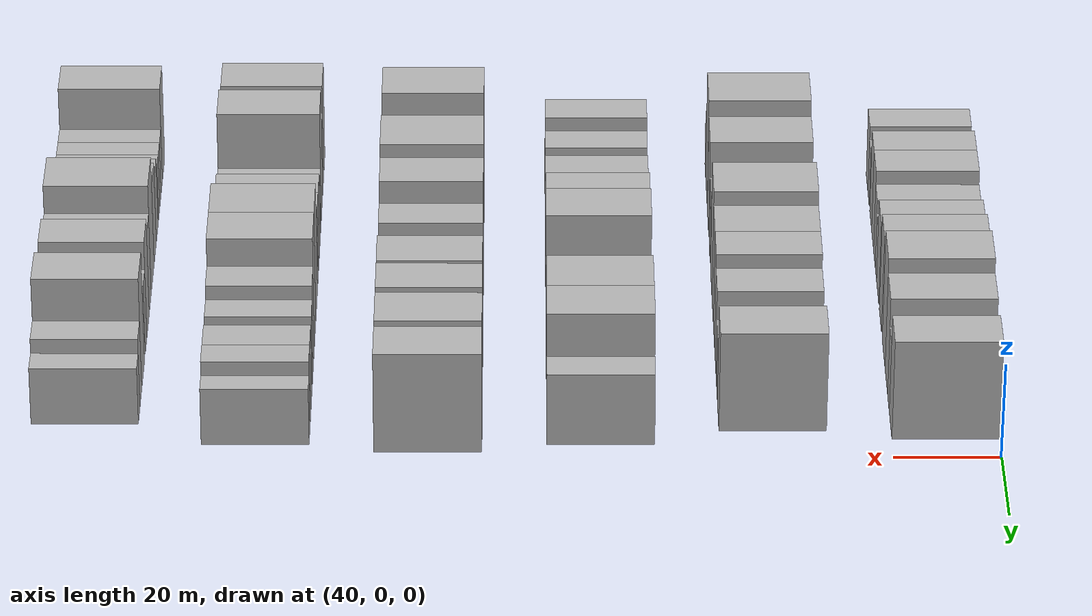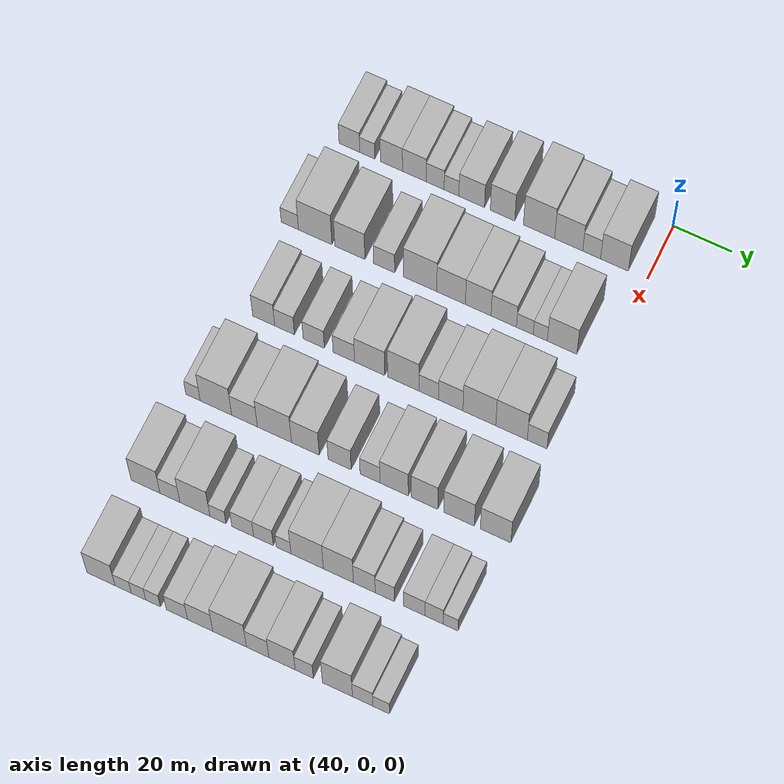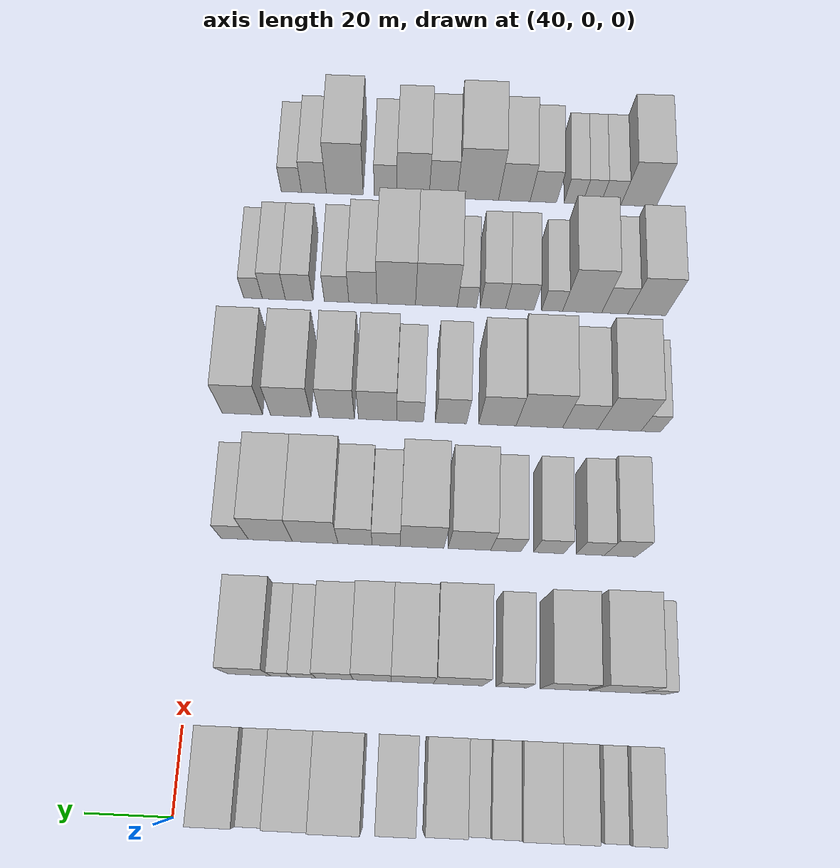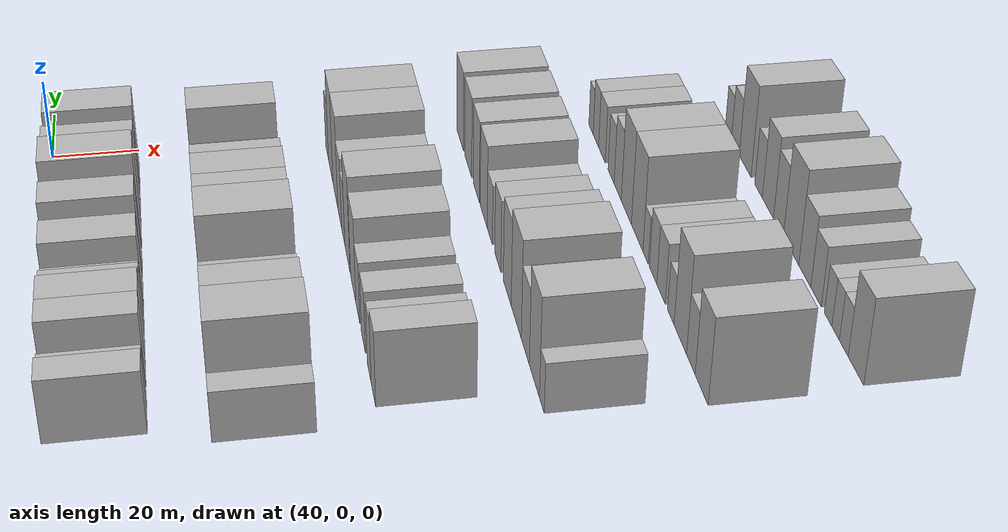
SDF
<sdf version="1.6">
 <world name="default">
  <model name="building_51">
   <static>1</static>
   <pose>50.0000 -103.2540 0 0.000000 0.000000 0.000000</pose>
   <link name="link">
    <pose>0 0 7.50 0 0 0</pose>
    <collision name="collision"><geometry><box><size>20.0000 7.2651 15.0000</size></box></geometry></collision>
    <visual name="visual">
     <cast_shadows>0</cast_shadows>
     <geometry><box><size>20.0000 7.2651 15.0000</size></box></geometry>
     <material>
      <script>
       <uri>model://HANNAS_wall/materials/scripts</uri>
       <uri>model://HANNAS_wall/materials/textures</uri>
       <name>vrc/HANNAS_wall</name>
      </script>
     </material>
    </visual>
   </link>
  </model>
  <model name="building_52">
   <static>1</static>
   <pose>50.0000 -96.9912 0 0.000000 0.000000 0.000000</pose>
   <link name="link">
    <pose>0 0 6.00 0 0 0</pose>
    <collision name="collision"><geometry><box><size>20.0000 5.2605 12.0000</size></box></geometry></collision>
    <visual name="visual">
     <cast_shadows>0</cast_shadows>
     <geometry><box><size>20.0000 5.2605 12.0000</size></box></geometry>
     <material>
      <script>
       <uri>model://HANNAS_wall/materials/scripts</uri>
       <uri>model://HANNAS_wall/materials/textures</uri>
       <name>vrc/HANNAS_wall</name>
      </script>
     </material>
    </visual>
   </link>
  </model>
  <model name="building_53">
   <static>1</static>
   <pose>50.0000 -88.5004 0 0.000000 0.000000 0.000000</pose>
   <link name="link">
    <pose>0 0 9.00 0 0 0</pose>
    <collision name="collision"><geometry><box><size>20.0000 7.7209 18.0000</size></box></geometry></collision>
    <visual name="visual">
     <cast_shadows>0</cast_shadows>
     <geometry><box><size>20.0000 7.7209 18.0000</size></box></geometry>
     <material>
      <script>
       <uri>model://HANNAS_wall/materials/scripts</uri>
       <uri>model://HANNAS_wall/materials/textures</uri>
       <name>vrc/HANNAS_wall</name>
      </script>
     </material>
    </visual>
   </link>
  </model>
  <model name="building_54">
   <static>1</static>
   <pose>50.0000 -80.4961 0 0.000000 0.000000 0.000000</pose>
   <link name="link">
    <pose>0 0 9.00 0 0 0</pose>
    <collision name="collision"><geometry><box><size>20.0000 8.2876 18.0000</size></box></geometry></collision>
    <visual name="visual">
     <cast_shadows>0</cast_shadows>
     <geometry><box><size>20.0000 8.2876 18.0000</size></box></geometry>
     <material>
      <script>
       <uri>model://HANNAS_wall/materials/scripts</uri>
       <uri>model://HANNAS_wall/materials/textures</uri>
       <name>vrc/HANNAS_wall</name>
      </script>
     </material>
    </visual>
   </link>
  </model>
  <model name="building_55">
   <static>1</static>
   <pose>50.0000 -73.2451 0 0.000000 0.000000 0.000000</pose>
   <link name="link">
    <pose>0 0 7.50 0 0 0</pose>
    <collision name="collision"><geometry><box><size>20.0000 6.2145 15.0000</size></box></geometry></collision>
    <visual name="visual">
     <cast_shadows>0</cast_shadows>
     <geometry><box><size>20.0000 6.2145 15.0000</size></box></geometry>
     <material>
      <script>
       <uri>model://HANNAS_wall/materials/scripts</uri>
       <uri>model://HANNAS_wall/materials/textures</uri>
       <name>vrc/HANNAS_wall</name>
      </script>
     </material>
    </visual>
   </link>
  </model>
  <model name="building_56">
   <static>1</static>
   <pose>50.0000 -67.5578 0 0.000000 0.000000 0.000000</pose>
   <link name="link">
    <pose>0 0 6.00 0 0 0</pose>
    <collision name="collision"><geometry><box><size>20.0000 5.1600 12.0000</size></box></geometry></collision>
    <visual name="visual">
     <cast_shadows>0</cast_shadows>
     <geometry><box><size>20.0000 5.1600 12.0000</size></box></geometry>
     <material>
      <script>
       <uri>model://HANNAS_wall/materials/scripts</uri>
       <uri>model://HANNAS_wall/materials/textures</uri>
       <name>vrc/HANNAS_wall</name>
      </script>
     </material>
    </visual>
   </link>
  </model>
  <model name="building_57">
   <static>1</static>
   <pose>50.0000 -60.5214 0 0.000000 0.000000 0.000000</pose>
   <link name="link">
    <pose>0 0 9.00 0 0 0</pose>
    <collision name="collision"><geometry><box><size>20.0000 8.9129 18.0000</size></box></geometry></collision>
    <visual name="visual">
     <cast_shadows>0</cast_shadows>
     <geometry><box><size>20.0000 8.9129 18.0000</size></box></geometry>
     <material>
      <script>
       <uri>model://HANNAS_wall/materials/scripts</uri>
       <uri>model://HANNAS_wall/materials/textures</uri>
       <name>vrc/HANNAS_wall</name>
      </script>
     </material>
    </visual>
   </link>
  </model>
  <model name="building_58">
   <static>1</static>
   <pose>50.0000 -49.8294 0 0.000000 0.000000 0.000000</pose>
   <link name="link">
    <pose>0 0 10.50 0 0 0</pose>
    <collision name="collision"><geometry><box><size>20.0000 8.4711 21.0000</size></box></geometry></collision>
    <visual name="visual">
     <cast_shadows>0</cast_shadows>
     <geometry><box><size>20.0000 8.4711 21.0000</size></box></geometry>
     <material>
      <script>
       <uri>model://HANNAS_wall/materials/scripts</uri>
       <uri>model://HANNAS_wall/materials/textures</uri>
       <name>vrc/HANNAS_wall</name>
      </script>
     </material>
    </visual>
   </link>
  </model>
  <model name="building_59">
   <static>1</static>
   <pose>50.0000 -37.2145 0 0.000000 0.000000 0.000000</pose>
   <link name="link">
    <pose>0 0 12.00 0 0 0</pose>
    <collision name="collision"><geometry><box><size>20.0000 10.7588 24.0000</size></box></geometry></collision>
    <visual name="visual">
     <cast_shadows>0</cast_shadows>
     <geometry><box><size>20.0000 10.7588 24.0000</size></box></geometry>
     <material>
      <script>
       <uri>model://HANNAS_wall/materials/scripts</uri>
       <uri>model://HANNAS_wall/materials/textures</uri>
       <name>vrc/HANNAS_wall</name>
      </script>
     </material>
    </visual>
   </link>
  </model>
  <model name="building_60">
   <static>1</static>
   <pose>50.0000 -26.9873 0 0.000000 0.000000 0.000000</pose>
   <link name="link">
    <pose>0 0 10.50 0 0 0</pose>
    <collision name="collision"><geometry><box><size>20.0000 9.6956 21.0000</size></box></geometry></collision>
    <visual name="visual">
     <cast_shadows>0</cast_shadows>
     <geometry><box><size>20.0000 9.6956 21.0000</size></box></geometry>
     <material>
      <script>
       <uri>model://HANNAS_wall/materials/scripts</uri>
       <uri>model://HANNAS_wall/materials/textures</uri>
       <name>vrc/HANNAS_wall</name>
      </script>
     </material>
    </visual>
   </link>
  </model>
  <model name="building_61">
   <static>1</static>
   <pose>50.0000 -19.0849 0 0.000000 0.000000 0.000000</pose>
   <link name="link">
    <pose>0 0 7.50 0 0 0</pose>
    <collision name="collision"><geometry><box><size>20.0000 6.1093 15.0000</size></box></geometry></collision>
    <visual name="visual">
     <cast_shadows>0</cast_shadows>
     <geometry><box><size>20.0000 6.1093 15.0000</size></box></geometry>
     <material>
      <script>
       <uri>model://HANNAS_wall/materials/scripts</uri>
       <uri>model://HANNAS_wall/materials/textures</uri>
       <name>vrc/HANNAS_wall</name>
      </script>
     </material>
    </visual>
   </link>
  </model>
  <model name="building_62">
   <static>1</static>
   <pose>50.0000 -11.2465 0 0.000000 0.000000 0.000000</pose>
   <link name="link">
    <pose>0 0 10.50 0 0 0</pose>
    <collision name="collision"><geometry><box><size>20.0000 9.5676 21.0000</size></box></geometry></collision>
    <visual name="visual">
     <cast_shadows>0</cast_shadows>
     <geometry><box><size>20.0000 9.5676 21.0000</size></box></geometry>
     <material>
      <script>
       <uri>model://HANNAS_wall/materials/scripts</uri>
       <uri>model://HANNAS_wall/materials/textures</uri>
       <name>vrc/HANNAS_wall</name>
      </script>
     </material>
    </visual>
   </link>
  </model>
  <model name="building_168">
   <static>1</static>
   <pose>82.0000 -108.4300 0 0.000000 0.000000 0.000000</pose>
   <link name="link">
    <pose>0 0 6.00 0 0 0</pose>
    <collision name="collision"><geometry><box><size>20.0000 5.9896 12.0000</size></box></geometry></collision>
    <visual name="visual">
     <cast_shadows>0</cast_shadows>
     <geometry><box><size>20.0000 5.9896 12.0000</size></box></geometry>
     <material>
      <script>
       <uri>model://HANNAS_wall/materials/scripts</uri>
       <uri>model://HANNAS_wall/materials/textures</uri>
       <name>vrc/HANNAS_wall</name>
      </script>
     </material>
    </visual>
   </link>
  </model>
  <model name="building_169">
   <static>1</static>
   <pose>82.0000 -99.5789 0 0.000000 0.000000 0.000000</pose>
   <link name="link">
    <pose>0 0 12.00 0 0 0</pose>
    <collision name="collision"><geometry><box><size>20.0000 11.7125 24.0000</size></box></geometry></collision>
    <visual name="visual">
     <cast_shadows>0</cast_shadows>
     <geometry><box><size>20.0000 11.7125 24.0000</size></box></geometry>
     <material>
      <script>
       <uri>model://HANNAS_wall/materials/scripts</uri>
       <uri>model://HANNAS_wall/materials/textures</uri>
       <name>vrc/HANNAS_wall</name>
      </script>
     </material>
    </visual>
   </link>
  </model>
  <model name="building_170">
   <static>1</static>
   <pose>82.0000 -87.4843 0 0.000000 0.000000 0.000000</pose>
   <link name="link">
    <pose>0 0 10.50 0 0 0</pose>
    <collision name="collision"><geometry><box><size>20.0000 10.4766 21.0000</size></box></geometry></collision>
    <visual name="visual">
     <cast_shadows>0</cast_shadows>
     <geometry><box><size>20.0000 10.4766 21.0000</size></box></geometry>
     <material>
      <script>
       <uri>model://HANNAS_wall/materials/scripts</uri>
       <uri>model://HANNAS_wall/materials/textures</uri>
       <name>vrc/HANNAS_wall</name>
      </script>
     </material>
    </visual>
   </link>
  </model>
  <model name="building_171">
   <static>1</static>
   <pose>82.0000 -75.5861 0 0.000000 0.000000 0.000000</pose>
   <link name="link">
    <pose>0 0 7.50 0 0 0</pose>
    <collision name="collision"><geometry><box><size>20.0000 7.3199 15.0000</size></box></geometry></collision>
    <visual name="visual">
     <cast_shadows>0</cast_shadows>
     <geometry><box><size>20.0000 7.3199 15.0000</size></box></geometry>
     <material>
      <script>
       <uri>model://HANNAS_wall/materials/scripts</uri>
       <uri>model://HANNAS_wall/materials/textures</uri>
       <name>vrc/HANNAS_wall</name>
      </script>
     </material>
    </visual>
   </link>
  </model>
  <model name="building_172">
   <static>1</static>
   <pose>82.0000 -63.1602 0 0.000000 0.000000 0.000000</pose>
   <link name="link">
    <pose>0 0 12.00 0 0 0</pose>
    <collision name="collision"><geometry><box><size>20.0000 11.5320 24.0000</size></box></geometry></collision>
    <visual name="visual">
     <cast_shadows>0</cast_shadows>
     <geometry><box><size>20.0000 11.5320 24.0000</size></box></geometry>
     <material>
      <script>
       <uri>model://HANNAS_wall/materials/scripts</uri>
       <uri>model://HANNAS_wall/materials/textures</uri>
       <name>vrc/HANNAS_wall</name>
      </script>
     </material>
    </visual>
   </link>
  </model>
  <model name="building_173">
   <static>1</static>
   <pose>82.0000 -52.4671 0 0.000000 0.000000 0.000000</pose>
   <link name="link">
    <pose>0 0 10.50 0 0 0</pose>
    <collision name="collision"><geometry><box><size>20.0000 9.8542 21.0000</size></box></geometry></collision>
    <visual name="visual">
     <cast_shadows>0</cast_shadows>
     <geometry><box><size>20.0000 9.8542 21.0000</size></box></geometry>
     <material>
      <script>
       <uri>model://HANNAS_wall/materials/scripts</uri>
       <uri>model://HANNAS_wall/materials/textures</uri>
       <name>vrc/HANNAS_wall</name>
      </script>
     </material>
    </visual>
   </link>
  </model>
  <model name="building_174">
   <static>1</static>
   <pose>82.0000 -43.1349 0 0.000000 0.000000 0.000000</pose>
   <link name="link">
    <pose>0 0 10.50 0 0 0</pose>
    <collision name="collision"><geometry><box><size>20.0000 8.8101 21.0000</size></box></geometry></collision>
    <visual name="visual">
     <cast_shadows>0</cast_shadows>
     <geometry><box><size>20.0000 8.8101 21.0000</size></box></geometry>
     <material>
      <script>
       <uri>model://HANNAS_wall/materials/scripts</uri>
       <uri>model://HANNAS_wall/materials/textures</uri>
       <name>vrc/HANNAS_wall</name>
      </script>
     </material>
    </visual>
   </link>
  </model>
  <model name="building_175">
   <static>1</static>
   <pose>82.0000 -34.3583 0 0.000000 0.000000 0.000000</pose>
   <link name="link">
    <pose>0 0 9.00 0 0 0</pose>
    <collision name="collision"><geometry><box><size>20.0000 8.7432 18.0000</size></box></geometry></collision>
    <visual name="visual">
     <cast_shadows>0</cast_shadows>
     <geometry><box><size>20.0000 8.7432 18.0000</size></box></geometry>
     <material>
      <script>
       <uri>model://HANNAS_wall/materials/scripts</uri>
       <uri>model://HANNAS_wall/materials/textures</uri>
       <name>vrc/HANNAS_wall</name>
      </script>
     </material>
    </visual>
   </link>
  </model>
  <model name="building_176">
   <static>1</static>
   <pose>82.0000 -27.1384 0 0.000000 0.000000 0.000000</pose>
   <link name="link">
    <pose>0 0 6.00 0 0 0</pose>
    <collision name="collision"><geometry><box><size>20.0000 5.6965 12.0000</size></box></geometry></collision>
    <visual name="visual">
     <cast_shadows>0</cast_shadows>
     <geometry><box><size>20.0000 5.6965 12.0000</size></box></geometry>
     <material>
      <script>
       <uri>model://HANNAS_wall/materials/scripts</uri>
       <uri>model://HANNAS_wall/materials/textures</uri>
       <name>vrc/HANNAS_wall</name>
      </script>
     </material>
    </visual>
   </link>
  </model>
  <model name="building_177">
   <static>1</static>
   <pose>82.0000 -21.8829 0 0.000000 0.000000 0.000000</pose>
   <link name="link">
    <pose>0 0 6.00 0 0 0</pose>
    <collision name="collision"><geometry><box><size>20.0000 4.8146 12.0000</size></box></geometry></collision>
    <visual name="visual">
     <cast_shadows>0</cast_shadows>
     <geometry><box><size>20.0000 4.8146 12.0000</size></box></geometry>
     <material>
      <script>
       <uri>model://HANNAS_wall/materials/scripts</uri>
       <uri>model://HANNAS_wall/materials/textures</uri>
       <name>vrc/HANNAS_wall</name>
      </script>
     </material>
    </visual>
   </link>
  </model>
  <model name="building_178">
   <static>1</static>
   <pose>82.0000 -14.4329 0 0.000000 0.000000 0.000000</pose>
   <link name="link">
    <pose>0 0 10.50 0 0 0</pose>
    <collision name="collision"><geometry><box><size>20.0000 10.0854 21.0000</size></box></geometry></collision>
    <visual name="visual">
     <cast_shadows>0</cast_shadows>
     <geometry><box><size>20.0000 10.0854 21.0000</size></box></geometry>
     <material>
      <script>
       <uri>model://HANNAS_wall/materials/scripts</uri>
       <uri>model://HANNAS_wall/materials/textures</uri>
       <name>vrc/HANNAS_wall</name>
      </script>
     </material>
    </visual>
   </link>
  </model>
  <model name="building_284">
   <static>1</static>
   <pose>114.0000 -101.6363 0 0.000000 0.000000 0.000000</pose>
   <link name="link">
    <pose>0 0 9.00 0 0 0</pose>
    <collision name="collision"><geometry><box><size>20.0000 7.6296 18.0000</size></box></geometry></collision>
    <visual name="visual">
     <cast_shadows>0</cast_shadows>
     <geometry><box><size>20.0000 7.6296 18.0000</size></box></geometry>
     <material>
      <script>
       <uri>model://HANNAS_wall/materials/scripts</uri>
       <uri>model://HANNAS_wall/materials/textures</uri>
       <name>vrc/HANNAS_wall</name>
      </script>
     </material>
    </visual>
   </link>
  </model>
  <model name="building_285">
   <static>1</static>
   <pose>114.0000 -94.4002 0 0.000000 0.000000 0.000000</pose>
   <link name="link">
    <pose>0 0 7.50 0 0 0</pose>
    <collision name="collision"><geometry><box><size>20.0000 6.8426 15.0000</size></box></geometry></collision>
    <visual name="visual">
     <cast_shadows>0</cast_shadows>
     <geometry><box><size>20.0000 6.8426 15.0000</size></box></geometry>
     <material>
      <script>
       <uri>model://HANNAS_wall/materials/scripts</uri>
       <uri>model://HANNAS_wall/materials/textures</uri>
       <name>vrc/HANNAS_wall</name>
      </script>
     </material>
    </visual>
   </link>
  </model>
  <model name="building_286">
   <static>1</static>
   <pose>114.0000 -84.3075 0 0.000000 0.000000 0.000000</pose>
   <link name="link">
    <pose>0 0 7.50 0 0 0</pose>
    <collision name="collision"><geometry><box><size>20.0000 7.3428 15.0000</size></box></geometry></collision>
    <visual name="visual">
     <cast_shadows>0</cast_shadows>
     <geometry><box><size>20.0000 7.3428 15.0000</size></box></geometry>
     <material>
      <script>
       <uri>model://HANNAS_wall/materials/scripts</uri>
       <uri>model://HANNAS_wall/materials/textures</uri>
       <name>vrc/HANNAS_wall</name>
      </script>
     </material>
    </visual>
   </link>
  </model>
  <model name="building_287">
   <static>1</static>
   <pose>114.0000 -73.9359 0 0.000000 0.000000 0.000000</pose>
   <link name="link">
    <pose>0 0 7.50 0 0 0</pose>
    <collision name="collision"><geometry><box><size>20.0000 7.4003 15.0000</size></box></geometry></collision>
    <visual name="visual">
     <cast_shadows>0</cast_shadows>
     <geometry><box><size>20.0000 7.4003 15.0000</size></box></geometry>
     <material>
      <script>
       <uri>model://HANNAS_wall/materials/scripts</uri>
       <uri>model://HANNAS_wall/materials/textures</uri>
       <name>vrc/HANNAS_wall</name>
      </script>
     </material>
    </visual>
   </link>
  </model>
  <model name="building_288">
   <static>1</static>
   <pose>114.0000 -65.0662 0 0.000000 0.000000 0.000000</pose>
   <link name="link">
    <pose>0 0 10.50 0 0 0</pose>
    <collision name="collision"><geometry><box><size>20.0000 10.3392 21.0000</size></box></geometry></collision>
    <visual name="visual">
     <cast_shadows>0</cast_shadows>
     <geometry><box><size>20.0000 10.3392 21.0000</size></box></geometry>
     <material>
      <script>
       <uri>model://HANNAS_wall/materials/scripts</uri>
       <uri>model://HANNAS_wall/materials/textures</uri>
       <name>vrc/HANNAS_wall</name>
      </script>
     </material>
    </visual>
   </link>
  </model>
  <model name="building_289">
   <static>1</static>
   <pose>114.0000 -53.5792 0 0.000000 0.000000 0.000000</pose>
   <link name="link">
    <pose>0 0 12.00 0 0 0</pose>
    <collision name="collision"><geometry><box><size>20.0000 10.6347 24.0000</size></box></geometry></collision>
    <visual name="visual">
     <cast_shadows>0</cast_shadows>
     <geometry><box><size>20.0000 10.6347 24.0000</size></box></geometry>
     <material>
      <script>
       <uri>model://HANNAS_wall/materials/scripts</uri>
       <uri>model://HANNAS_wall/materials/textures</uri>
       <name>vrc/HANNAS_wall</name>
      </script>
     </material>
    </visual>
   </link>
  </model>
  <model name="building_290">
   <static>1</static>
   <pose>114.0000 -44.8897 0 0.000000 0.000000 0.000000</pose>
   <link name="link">
    <pose>0 0 7.50 0 0 0</pose>
    <collision name="collision"><geometry><box><size>20.0000 6.7442 15.0000</size></box></geometry></collision>
    <visual name="visual">
     <cast_shadows>0</cast_shadows>
     <geometry><box><size>20.0000 6.7442 15.0000</size></box></geometry>
     <material>
      <script>
       <uri>model://HANNAS_wall/materials/scripts</uri>
       <uri>model://HANNAS_wall/materials/textures</uri>
       <name>vrc/HANNAS_wall</name>
      </script>
     </material>
    </visual>
   </link>
  </model>
  <model name="building_291">
   <static>1</static>
   <pose>114.0000 -37.3529 0 0.000000 0.000000 0.000000</pose>
   <link name="link">
    <pose>0 0 9.00 0 0 0</pose>
    <collision name="collision"><geometry><box><size>20.0000 8.3294 18.0000</size></box></geometry></collision>
    <visual name="visual">
     <cast_shadows>0</cast_shadows>
     <geometry><box><size>20.0000 8.3294 18.0000</size></box></geometry>
     <material>
      <script>
       <uri>model://HANNAS_wall/materials/scripts</uri>
       <uri>model://HANNAS_wall/materials/textures</uri>
       <name>vrc/HANNAS_wall</name>
      </script>
     </material>
    </visual>
   </link>
  </model>
  <model name="building_292">
   <static>1</static>
   <pose>114.0000 -27.6240 0 0.000000 0.000000 0.000000</pose>
   <link name="link">
    <pose>0 0 12.00 0 0 0</pose>
    <collision name="collision"><geometry><box><size>20.0000 11.1285 24.0000</size></box></geometry></collision>
    <visual name="visual">
     <cast_shadows>0</cast_shadows>
     <geometry><box><size>20.0000 11.1285 24.0000</size></box></geometry>
     <material>
      <script>
       <uri>model://HANNAS_wall/materials/scripts</uri>
       <uri>model://HANNAS_wall/materials/textures</uri>
       <name>vrc/HANNAS_wall</name>
      </script>
     </material>
    </visual>
   </link>
  </model>
  <model name="building_293">
   <static>1</static>
   <pose>114.0000 -16.7165 0 0.000000 0.000000 0.000000</pose>
   <link name="link">
    <pose>0 0 12.00 0 0 0</pose>
    <collision name="collision"><geometry><box><size>20.0000 10.6866 24.0000</size></box></geometry></collision>
    <visual name="visual">
     <cast_shadows>0</cast_shadows>
     <geometry><box><size>20.0000 10.6866 24.0000</size></box></geometry>
     <material>
      <script>
       <uri>model://HANNAS_wall/materials/scripts</uri>
       <uri>model://HANNAS_wall/materials/textures</uri>
       <name>vrc/HANNAS_wall</name>
      </script>
     </material>
    </visual>
   </link>
  </model>
  <model name="building_294">
   <static>1</static>
   <pose>114.0000 -8.0231 0 0.000000 0.000000 0.000000</pose>
   <link name="link">
    <pose>0 0 7.50 0 0 0</pose>
    <collision name="collision"><geometry><box><size>20.0000 6.7001 15.0000</size></box></geometry></collision>
    <visual name="visual">
     <cast_shadows>0</cast_shadows>
     <geometry><box><size>20.0000 6.7001 15.0000</size></box></geometry>
     <material>
      <script>
       <uri>model://HANNAS_wall/materials/scripts</uri>
       <uri>model://HANNAS_wall/materials/textures</uri>
       <name>vrc/HANNAS_wall</name>
      </script>
     </material>
    </visual>
   </link>
  </model>
  <model name="building_406">
   <static>1</static>
   <pose>146.0000 -110.0127 0 0.000000 0.000000 0.000000</pose>
   <link name="link">
    <pose>0 0 6.00 0 0 0</pose>
    <collision name="collision"><geometry><box><size>20.0000 4.9311 12.0000</size></box></geometry></collision>
    <visual name="visual">
     <cast_shadows>0</cast_shadows>
     <geometry><box><size>20.0000 4.9311 12.0000</size></box></geometry>
     <material>
      <script>
       <uri>model://HANNAS_wall/materials/scripts</uri>
       <uri>model://HANNAS_wall/materials/textures</uri>
       <name>vrc/HANNAS_wall</name>
      </script>
     </material>
    </visual>
   </link>
  </model>
  <model name="building_407">
   <static>1</static>
   <pose>146.0000 -102.1307 0 0.000000 0.000000 0.000000</pose>
   <link name="link">
    <pose>0 0 12.00 0 0 0</pose>
    <collision name="collision"><geometry><box><size>20.0000 10.8327 24.0000</size></box></geometry></collision>
    <visual name="visual">
     <cast_shadows>0</cast_shadows>
     <geometry><box><size>20.0000 10.8327 24.0000</size></box></geometry>
     <material>
      <script>
       <uri>model://HANNAS_wall/materials/scripts</uri>
       <uri>model://HANNAS_wall/materials/textures</uri>
       <name>vrc/HANNAS_wall</name>
      </script>
     </material>
    </visual>
   </link>
  </model>
  <model name="building_408">
   <static>1</static>
   <pose>146.0000 -92.2898 0 0.000000 0.000000 0.000000</pose>
   <link name="link">
    <pose>0 0 9.00 0 0 0</pose>
    <collision name="collision"><geometry><box><size>20.0000 8.8492 18.0000</size></box></geometry></collision>
    <visual name="visual">
     <cast_shadows>0</cast_shadows>
     <geometry><box><size>20.0000 8.8492 18.0000</size></box></geometry>
     <material>
      <script>
       <uri>model://HANNAS_wall/materials/scripts</uri>
       <uri>model://HANNAS_wall/materials/textures</uri>
       <name>vrc/HANNAS_wall</name>
      </script>
     </material>
    </visual>
   </link>
  </model>
  <model name="building_409">
   <static>1</static>
   <pose>146.0000 -82.0065 0 0.000000 0.000000 0.000000</pose>
   <link name="link">
    <pose>0 0 12.00 0 0 0</pose>
    <collision name="collision"><geometry><box><size>20.0000 11.7173 24.0000</size></box></geometry></collision>
    <visual name="visual">
     <cast_shadows>0</cast_shadows>
     <geometry><box><size>20.0000 11.7173 24.0000</size></box></geometry>
     <material>
      <script>
       <uri>model://HANNAS_wall/materials/scripts</uri>
       <uri>model://HANNAS_wall/materials/textures</uri>
       <name>vrc/HANNAS_wall</name>
      </script>
     </material>
    </visual>
   </link>
  </model>
  <model name="building_410">
   <static>1</static>
   <pose>146.0000 -71.4161 0 0.000000 0.000000 0.000000</pose>
   <link name="link">
    <pose>0 0 10.50 0 0 0</pose>
    <collision name="collision"><geometry><box><size>20.0000 9.4635 21.0000</size></box></geometry></collision>
    <visual name="visual">
     <cast_shadows>0</cast_shadows>
     <geometry><box><size>20.0000 9.4635 21.0000</size></box></geometry>
     <material>
      <script>
       <uri>model://HANNAS_wall/materials/scripts</uri>
       <uri>model://HANNAS_wall/materials/textures</uri>
       <name>vrc/HANNAS_wall</name>
      </script>
     </material>
    </visual>
   </link>
  </model>
  <model name="building_411">
   <static>1</static>
   <pose>146.0000 -59.7430 0 0.000000 0.000000 0.000000</pose>
   <link name="link">
    <pose>0 0 9.00 0 0 0</pose>
    <collision name="collision"><geometry><box><size>20.0000 7.8827 18.0000</size></box></geometry></collision>
    <visual name="visual">
     <cast_shadows>0</cast_shadows>
     <geometry><box><size>20.0000 7.8827 18.0000</size></box></geometry>
     <material>
      <script>
       <uri>model://HANNAS_wall/materials/scripts</uri>
       <uri>model://HANNAS_wall/materials/textures</uri>
       <name>vrc/HANNAS_wall</name>
      </script>
     </material>
    </visual>
   </link>
  </model>
  <model name="building_412">
   <static>1</static>
   <pose>146.0000 -49.4036 0 0.000000 0.000000 0.000000</pose>
   <link name="link">
    <pose>0 0 7.50 0 0 0</pose>
    <collision name="collision"><geometry><box><size>20.0000 6.7962 15.0000</size></box></geometry></collision>
    <visual name="visual">
     <cast_shadows>0</cast_shadows>
     <geometry><box><size>20.0000 6.7962 15.0000</size></box></geometry>
     <material>
      <script>
       <uri>model://HANNAS_wall/materials/scripts</uri>
       <uri>model://HANNAS_wall/materials/textures</uri>
       <name>vrc/HANNAS_wall</name>
      </script>
     </material>
    </visual>
   </link>
  </model>
  <model name="building_413">
   <static>1</static>
   <pose>146.0000 -41.2152 0 0.000000 0.000000 0.000000</pose>
   <link name="link">
    <pose>0 0 10.50 0 0 0</pose>
    <collision name="collision"><geometry><box><size>20.0000 9.5805 21.0000</size></box></geometry></collision>
    <visual name="visual">
     <cast_shadows>0</cast_shadows>
     <geometry><box><size>20.0000 9.5805 21.0000</size></box></geometry>
     <material>
      <script>
       <uri>model://HANNAS_wall/materials/scripts</uri>
       <uri>model://HANNAS_wall/materials/textures</uri>
       <name>vrc/HANNAS_wall</name>
      </script>
     </material>
    </visual>
   </link>
  </model>
  <model name="building_414">
   <static>1</static>
   <pose>146.0000 -30.9499 0 0.000000 0.000000 0.000000</pose>
   <link name="link">
    <pose>0 0 10.50 0 0 0</pose>
    <collision name="collision"><geometry><box><size>20.0000 8.9502 21.0000</size></box></geometry></collision>
    <visual name="visual">
     <cast_shadows>0</cast_shadows>
     <geometry><box><size>20.0000 8.9502 21.0000</size></box></geometry>
     <material>
      <script>
       <uri>model://HANNAS_wall/materials/scripts</uri>
       <uri>model://HANNAS_wall/materials/textures</uri>
       <name>vrc/HANNAS_wall</name>
      </script>
     </material>
    </visual>
   </link>
  </model>
  <model name="building_415">
   <static>1</static>
   <pose>146.0000 -19.3184 0 0.000000 0.000000 0.000000</pose>
   <link name="link">
    <pose>0 0 10.50 0 0 0</pose>
    <collision name="collision"><geometry><box><size>20.0000 10.3127 21.0000</size></box></geometry></collision>
    <visual name="visual">
     <cast_shadows>0</cast_shadows>
     <geometry><box><size>20.0000 10.3127 21.0000</size></box></geometry>
     <material>
      <script>
       <uri>model://HANNAS_wall/materials/scripts</uri>
       <uri>model://HANNAS_wall/materials/textures</uri>
       <name>vrc/HANNAS_wall</name>
      </script>
     </material>
    </visual>
   </link>
  </model>
  <model name="building_416">
   <static>1</static>
   <pose>146.0000 -7.0288 0 0.000000 0.000000 0.000000</pose>
   <link name="link">
    <pose>0 0 10.50 0 0 0</pose>
    <collision name="collision"><geometry><box><size>20.0000 10.2665 21.0000</size></box></geometry></collision>
    <visual name="visual">
     <cast_shadows>0</cast_shadows>
     <geometry><box><size>20.0000 10.2665 21.0000</size></box></geometry>
     <material>
      <script>
       <uri>model://HANNAS_wall/materials/scripts</uri>
       <uri>model://HANNAS_wall/materials/textures</uri>
       <name>vrc/HANNAS_wall</name>
      </script>
     </material>
    </visual>
   </link>
  </model>
  <model name="building_525">
   <static>1</static>
   <pose>178.0000 -110.0388 0 0.000000 0.000000 0.000000</pose>
   <link name="link">
    <pose>0 0 10.50 0 0 0</pose>
    <collision name="collision"><geometry><box><size>20.0000 9.8669 21.0000</size></box></geometry></collision>
    <visual name="visual">
     <cast_shadows>0</cast_shadows>
     <geometry><box><size>20.0000 9.8669 21.0000</size></box></geometry>
     <material>
      <script>
       <uri>model://HANNAS_wall/materials/scripts</uri>
       <uri>model://HANNAS_wall/materials/textures</uri>
       <name>vrc/HANNAS_wall</name>
      </script>
     </material>
    </visual>
   </link>
  </model>
  <model name="building_526">
   <static>1</static>
   <pose>178.0000 -101.6885 0 0.000000 0.000000 0.000000</pose>
   <link name="link">
    <pose>0 0 7.50 0 0 0</pose>
    <collision name="collision"><geometry><box><size>20.0000 6.8337 15.0000</size></box></geometry></collision>
    <visual name="visual">
     <cast_shadows>0</cast_shadows>
     <geometry><box><size>20.0000 6.8337 15.0000</size></box></geometry>
     <material>
      <script>
       <uri>model://HANNAS_wall/materials/scripts</uri>
       <uri>model://HANNAS_wall/materials/textures</uri>
       <name>vrc/HANNAS_wall</name>
      </script>
     </material>
    </visual>
   </link>
  </model>
  <model name="building_527">
   <static>1</static>
   <pose>178.0000 -93.1528 0 0.000000 0.000000 0.000000</pose>
   <link name="link">
    <pose>0 0 12.00 0 0 0</pose>
    <collision name="collision"><geometry><box><size>20.0000 10.2378 24.0000</size></box></geometry></collision>
    <visual name="visual">
     <cast_shadows>0</cast_shadows>
     <geometry><box><size>20.0000 10.2378 24.0000</size></box></geometry>
     <material>
      <script>
       <uri>model://HANNAS_wall/materials/scripts</uri>
       <uri>model://HANNAS_wall/materials/textures</uri>
       <name>vrc/HANNAS_wall</name>
      </script>
     </material>
    </visual>
   </link>
  </model>
  <model name="building_528">
   <static>1</static>
   <pose>178.0000 -85.3049 0 0.000000 0.000000 0.000000</pose>
   <link name="link">
    <pose>0 0 6.00 0 0 0</pose>
    <collision name="collision"><geometry><box><size>20.0000 5.4581 12.0000</size></box></geometry></collision>
    <visual name="visual">
     <cast_shadows>0</cast_shadows>
     <geometry><box><size>20.0000 5.4581 12.0000</size></box></geometry>
     <material>
      <script>
       <uri>model://HANNAS_wall/materials/scripts</uri>
       <uri>model://HANNAS_wall/materials/textures</uri>
       <name>vrc/HANNAS_wall</name>
      </script>
     </material>
    </visual>
   </link>
  </model>
  <model name="building_529">
   <static>1</static>
   <pose>178.0000 -76.8603 0 0.000000 0.000000 0.000000</pose>
   <link name="link">
    <pose>0 0 7.50 0 0 0</pose>
    <collision name="collision"><geometry><box><size>20.0000 7.4310 15.0000</size></box></geometry></collision>
    <visual name="visual">
     <cast_shadows>0</cast_shadows>
     <geometry><box><size>20.0000 7.4310 15.0000</size></box></geometry>
     <material>
      <script>
       <uri>model://HANNAS_wall/materials/scripts</uri>
       <uri>model://HANNAS_wall/materials/textures</uri>
       <name>vrc/HANNAS_wall</name>
      </script>
     </material>
    </visual>
   </link>
  </model>
  <model name="building_530">
   <static>1</static>
   <pose>178.0000 -69.8156 0 0.000000 0.000000 0.000000</pose>
   <link name="link">
    <pose>0 0 7.50 0 0 0</pose>
    <collision name="collision"><geometry><box><size>20.0000 6.6586 15.0000</size></box></geometry></collision>
    <visual name="visual">
     <cast_shadows>0</cast_shadows>
     <geometry><box><size>20.0000 6.6586 15.0000</size></box></geometry>
     <material>
      <script>
       <uri>model://HANNAS_wall/materials/scripts</uri>
       <uri>model://HANNAS_wall/materials/textures</uri>
       <name>vrc/HANNAS_wall</name>
      </script>
     </material>
    </visual>
   </link>
  </model>
  <model name="building_531">
   <static>1</static>
   <pose>178.0000 -63.0019 0 0.000000 0.000000 0.000000</pose>
   <link name="link">
    <pose>0 0 6.00 0 0 0</pose>
    <collision name="collision"><geometry><box><size>20.0000 4.9687 12.0000</size></box></geometry></collision>
    <visual name="visual">
     <cast_shadows>0</cast_shadows>
     <geometry><box><size>20.0000 4.9687 12.0000</size></box></geometry>
     <material>
      <script>
       <uri>model://HANNAS_wall/materials/scripts</uri>
       <uri>model://HANNAS_wall/materials/textures</uri>
       <name>vrc/HANNAS_wall</name>
      </script>
     </material>
    </visual>
   </link>
  </model>
  <model name="building_532">
   <static>1</static>
   <pose>178.0000 -55.0395 0 0.000000 0.000000 0.000000</pose>
   <link name="link">
    <pose>0 0 12.00 0 0 0</pose>
    <collision name="collision"><geometry><box><size>20.0000 10.9561 24.0000</size></box></geometry></collision>
    <visual name="visual">
     <cast_shadows>0</cast_shadows>
     <geometry><box><size>20.0000 10.9561 24.0000</size></box></geometry>
     <material>
      <script>
       <uri>model://HANNAS_wall/materials/scripts</uri>
       <uri>model://HANNAS_wall/materials/textures</uri>
       <name>vrc/HANNAS_wall</name>
      </script>
     </material>
    </visual>
   </link>
  </model>
  <model name="building_533">
   <static>1</static>
   <pose>178.0000 -44.5074 0 0.000000 0.000000 0.000000</pose>
   <link name="link">
    <pose>0 0 12.00 0 0 0</pose>
    <collision name="collision"><geometry><box><size>20.0000 10.1083 24.0000</size></box></geometry></collision>
    <visual name="visual">
     <cast_shadows>0</cast_shadows>
     <geometry><box><size>20.0000 10.1083 24.0000</size></box></geometry>
     <material>
      <script>
       <uri>model://HANNAS_wall/materials/scripts</uri>
       <uri>model://HANNAS_wall/materials/textures</uri>
       <name>vrc/HANNAS_wall</name>
      </script>
     </material>
    </visual>
   </link>
  </model>
  <model name="building_534">
   <static>1</static>
   <pose>178.0000 -35.7909 0 0.000000 0.000000 0.000000</pose>
   <link name="link">
    <pose>0 0 9.00 0 0 0</pose>
    <collision name="collision"><geometry><box><size>20.0000 7.3246 18.0000</size></box></geometry></collision>
    <visual name="visual">
     <cast_shadows>0</cast_shadows>
     <geometry><box><size>20.0000 7.3246 18.0000</size></box></geometry>
     <material>
      <script>
       <uri>model://HANNAS_wall/materials/scripts</uri>
       <uri>model://HANNAS_wall/materials/textures</uri>
       <name>vrc/HANNAS_wall</name>
      </script>
     </material>
    </visual>
   </link>
  </model>
  <model name="building_535">
   <static>1</static>
   <pose>178.0000 -28.9217 0 0.000000 0.000000 0.000000</pose>
   <link name="link">
    <pose>0 0 7.50 0 0 0</pose>
    <collision name="collision"><geometry><box><size>20.0000 6.4137 15.0000</size></box></geometry></collision>
    <visual name="visual">
     <cast_shadows>0</cast_shadows>
     <geometry><box><size>20.0000 6.4137 15.0000</size></box></geometry>
     <material>
      <script>
       <uri>model://HANNAS_wall/materials/scripts</uri>
       <uri>model://HANNAS_wall/materials/textures</uri>
       <name>vrc/HANNAS_wall</name>
      </script>
     </material>
    </visual>
   </link>
  </model>
  <model name="building_536">
   <static>1</static>
   <pose>178.0000 -19.0897 0 0.000000 0.000000 0.000000</pose>
   <link name="link">
    <pose>0 0 7.50 0 0 0</pose>
    <collision name="collision"><geometry><box><size>20.0000 7.2504 15.0000</size></box></geometry></collision>
    <visual name="visual">
     <cast_shadows>0</cast_shadows>
     <geometry><box><size>20.0000 7.2504 15.0000</size></box></geometry>
     <material>
      <script>
       <uri>model://HANNAS_wall/materials/scripts</uri>
       <uri>model://HANNAS_wall/materials/textures</uri>
       <name>vrc/HANNAS_wall</name>
      </script>
     </material>
    </visual>
   </link>
  </model>
  <model name="building_537">
   <static>1</static>
   <pose>178.0000 -12.4391 0 0.000000 0.000000 0.000000</pose>
   <link name="link">
    <pose>0 0 7.50 0 0 0</pose>
    <collision name="collision"><geometry><box><size>20.0000 6.0509 15.0000</size></box></geometry></collision>
    <visual name="visual">
     <cast_shadows>0</cast_shadows>
     <geometry><box><size>20.0000 6.0509 15.0000</size></box></geometry>
     <material>
      <script>
       <uri>model://HANNAS_wall/materials/scripts</uri>
       <uri>model://HANNAS_wall/materials/textures</uri>
       <name>vrc/HANNAS_wall</name>
      </script>
     </material>
    </visual>
   </link>
  </model>
  <model name="building_538">
   <static>1</static>
   <pose>178.0000 -6.9455 0 0.000000 0.000000 0.000000</pose>
   <link name="link">
    <pose>0 0 6.00 0 0 0</pose>
    <collision name="collision"><geometry><box><size>20.0000 4.9362 12.0000</size></box></geometry></collision>
    <visual name="visual">
     <cast_shadows>0</cast_shadows>
     <geometry><box><size>20.0000 4.9362 12.0000</size></box></geometry>
     <material>
      <script>
       <uri>model://HANNAS_wall/materials/scripts</uri>
       <uri>model://HANNAS_wall/materials/textures</uri>
       <name>vrc/HANNAS_wall</name>
      </script>
     </material>
    </visual>
   </link>
  </model>
  <model name="building_639">
   <static>1</static>
   <pose>210.0000 -108.7694 0 0.000000 0.000000 0.000000</pose>
   <link name="link">
    <pose>0 0 10.50 0 0 0</pose>
    <collision name="collision"><geometry><box><size>20.0000 9.5695 21.0000</size></box></geometry></collision>
    <visual name="visual">
     <cast_shadows>0</cast_shadows>
     <geometry><box><size>20.0000 9.5695 21.0000</size></box></geometry>
     <material>
      <script>
       <uri>model://HANNAS_wall/materials/scripts</uri>
       <uri>model://HANNAS_wall/materials/textures</uri>
       <name>vrc/HANNAS_wall</name>
      </script>
     </material>
    </visual>
   </link>
  </model>
  <model name="building_640">
   <static>1</static>
   <pose>210.0000 -101.2238 0 0.000000 0.000000 0.000000</pose>
   <link name="link">
    <pose>0 0 6.00 0 0 0</pose>
    <collision name="collision"><geometry><box><size>20.0000 5.5216 12.0000</size></box></geometry></collision>
    <visual name="visual">
     <cast_shadows>0</cast_shadows>
     <geometry><box><size>20.0000 5.5216 12.0000</size></box></geometry>
     <material>
      <script>
       <uri>model://HANNAS_wall/materials/scripts</uri>
       <uri>model://HANNAS_wall/materials/textures</uri>
       <name>vrc/HANNAS_wall</name>
      </script>
     </material>
    </visual>
   </link>
  </model>
  <model name="building_641">
   <static>1</static>
   <pose>210.0000 -96.0212 0 0.000000 0.000000 0.000000</pose>
   <link name="link">
    <pose>0 0 6.00 0 0 0</pose>
    <collision name="collision"><geometry><box><size>20.0000 4.8837 12.0000</size></box></geometry></collision>
    <visual name="visual">
     <cast_shadows>0</cast_shadows>
     <geometry><box><size>20.0000 4.8837 12.0000</size></box></geometry>
     <material>
      <script>
       <uri>model://HANNAS_wall/materials/scripts</uri>
       <uri>model://HANNAS_wall/materials/textures</uri>
       <name>vrc/HANNAS_wall</name>
      </script>
     </material>
    </visual>
   </link>
  </model>
  <model name="building_642">
   <static>1</static>
   <pose>210.0000 -91.0895 0 0.000000 0.000000 0.000000</pose>
   <link name="link">
    <pose>0 0 6.00 0 0 0</pose>
    <collision name="collision"><geometry><box><size>20.0000 4.9797 12.0000</size></box></geometry></collision>
    <visual name="visual">
     <cast_shadows>0</cast_shadows>
     <geometry><box><size>20.0000 4.9797 12.0000</size></box></geometry>
     <material>
      <script>
       <uri>model://HANNAS_wall/materials/scripts</uri>
       <uri>model://HANNAS_wall/materials/textures</uri>
       <name>vrc/HANNAS_wall</name>
      </script>
     </material>
    </visual>
   </link>
  </model>
  <model name="building_643">
   <static>1</static>
   <pose>210.0000 -83.0169 0 0.000000 0.000000 0.000000</pose>
   <link name="link">
    <pose>0 0 7.50 0 0 0</pose>
    <collision name="collision"><geometry><box><size>20.0000 7.1655 15.0000</size></box></geometry></collision>
    <visual name="visual">
     <cast_shadows>0</cast_shadows>
     <geometry><box><size>20.0000 7.1655 15.0000</size></box></geometry>
     <material>
      <script>
       <uri>model://HANNAS_wall/materials/scripts</uri>
       <uri>model://HANNAS_wall/materials/textures</uri>
       <name>vrc/HANNAS_wall</name>
      </script>
     </material>
    </visual>
   </link>
  </model>
  <model name="building_644">
   <static>1</static>
   <pose>210.0000 -75.1614 0 0.000000 0.000000 0.000000</pose>
   <link name="link">
    <pose>0 0 9.00 0 0 0</pose>
    <collision name="collision"><geometry><box><size>20.0000 8.5455 18.0000</size></box></geometry></collision>
    <visual name="visual">
     <cast_shadows>0</cast_shadows>
     <geometry><box><size>20.0000 8.5455 18.0000</size></box></geometry>
     <material>
      <script>
       <uri>model://HANNAS_wall/materials/scripts</uri>
       <uri>model://HANNAS_wall/materials/textures</uri>
       <name>vrc/HANNAS_wall</name>
      </script>
     </material>
    </visual>
   </link>
  </model>
  <model name="building_645">
   <static>1</static>
   <pose>210.0000 -65.2484 0 0.000000 0.000000 0.000000</pose>
   <link name="link">
    <pose>0 0 12.00 0 0 0</pose>
    <collision name="collision"><geometry><box><size>20.0000 11.2804 24.0000</size></box></geometry></collision>
    <visual name="visual">
     <cast_shadows>0</cast_shadows>
     <geometry><box><size>20.0000 11.2804 24.0000</size></box></geometry>
     <material>
      <script>
       <uri>model://HANNAS_wall/materials/scripts</uri>
       <uri>model://HANNAS_wall/materials/textures</uri>
       <name>vrc/HANNAS_wall</name>
      </script>
     </material>
    </visual>
   </link>
  </model>
  <model name="building_646">
   <static>1</static>
   <pose>210.0000 -55.8337 0 0.000000 0.000000 0.000000</pose>
   <link name="link">
    <pose>0 0 9.00 0 0 0</pose>
    <collision name="collision"><geometry><box><size>20.0000 7.5488 18.0000</size></box></geometry></collision>
    <visual name="visual">
     <cast_shadows>0</cast_shadows>
     <geometry><box><size>20.0000 7.5488 18.0000</size></box></geometry>
     <material>
      <script>
       <uri>model://HANNAS_wall/materials/scripts</uri>
       <uri>model://HANNAS_wall/materials/textures</uri>
       <name>vrc/HANNAS_wall</name>
      </script>
     </material>
    </visual>
   </link>
  </model>
  <model name="building_647">
   <static>1</static>
   <pose>210.0000 -47.6667 0 0.000000 0.000000 0.000000</pose>
   <link name="link">
    <pose>0 0 10.50 0 0 0</pose>
    <collision name="collision"><geometry><box><size>20.0000 8.7852 21.0000</size></box></geometry></collision>
    <visual name="visual">
     <cast_shadows>0</cast_shadows>
     <geometry><box><size>20.0000 8.7852 21.0000</size></box></geometry>
     <material>
      <script>
       <uri>model://HANNAS_wall/materials/scripts</uri>
       <uri>model://HANNAS_wall/materials/textures</uri>
       <name>vrc/HANNAS_wall</name>
      </script>
     </material>
    </visual>
   </link>
  </model>
  <model name="building_648">
   <static>1</static>
   <pose>210.0000 -40.2291 0 0.000000 0.000000 0.000000</pose>
   <link name="link">
    <pose>0 0 7.50 0 0 0</pose>
    <collision name="collision"><geometry><box><size>20.0000 6.0901 15.0000</size></box></geometry></collision>
    <visual name="visual">
     <cast_shadows>0</cast_shadows>
     <geometry><box><size>20.0000 6.0901 15.0000</size></box></geometry>
     <material>
      <script>
       <uri>model://HANNAS_wall/materials/scripts</uri>
       <uri>model://HANNAS_wall/materials/textures</uri>
       <name>vrc/HANNAS_wall</name>
      </script>
     </material>
    </visual>
   </link>
  </model>
  <model name="building_649">
   <static>1</static>
   <pose>210.0000 -29.1756 0 0.000000 0.000000 0.000000</pose>
   <link name="link">
    <pose>0 0 12.00 0 0 0</pose>
    <collision name="collision"><geometry><box><size>20.0000 10.0168 24.0000</size></box></geometry></collision>
    <visual name="visual">
     <cast_shadows>0</cast_shadows>
     <geometry><box><size>20.0000 10.0168 24.0000</size></box></geometry>
     <material>
      <script>
       <uri>model://HANNAS_wall/materials/scripts</uri>
       <uri>model://HANNAS_wall/materials/textures</uri>
       <name>vrc/HANNAS_wall</name>
      </script>
     </material>
    </visual>
   </link>
  </model>
  <model name="building_650">
   <static>1</static>
   <pose>210.0000 -20.7825 0 0.000000 0.000000 0.000000</pose>
   <link name="link">
    <pose>0 0 7.50 0 0 0</pose>
    <collision name="collision"><geometry><box><size>20.0000 6.7694 15.0000</size></box></geometry></collision>
    <visual name="visual">
     <cast_shadows>0</cast_shadows>
     <geometry><box><size>20.0000 6.7694 15.0000</size></box></geometry>
     <material>
      <script>
       <uri>model://HANNAS_wall/materials/scripts</uri>
       <uri>model://HANNAS_wall/materials/textures</uri>
       <name>vrc/HANNAS_wall</name>
      </script>
     </material>
    </visual>
   </link>
  </model>
  <model name="building_651">
   <static>1</static>
   <pose>210.0000 -14.6319 0 0.000000 0.000000 0.000000</pose>
   <link name="link">
    <pose>0 0 6.00 0 0 0</pose>
    <collision name="collision"><geometry><box><size>20.0000 5.5317 12.0000</size></box></geometry></collision>
    <visual name="visual">
     <cast_shadows>0</cast_shadows>
     <geometry><box><size>20.0000 5.5317 12.0000</size></box></geometry>
     <material>
      <script>
       <uri>model://HANNAS_wall/materials/scripts</uri>
       <uri>model://HANNAS_wall/materials/textures</uri>
       <name>vrc/HANNAS_wall</name>
      </script>
     </material>
    </visual>
   </link>
  </model>
 </world>
</sdf>
